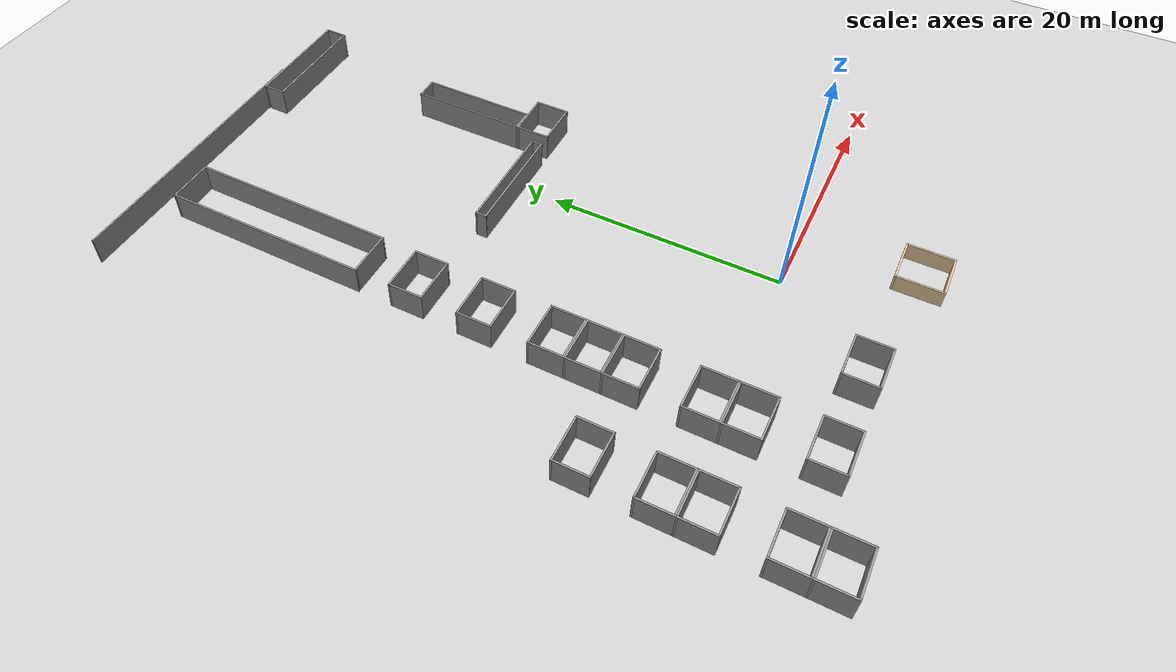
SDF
<sdf version="1.6">
 <world name="default">
  <model name="ground_plane">
   <static>1</static>
   <link name="link">
    <collision name="collision">
     <geometry><plane><normal>0 0 1</normal><size>105 105</size></plane></geometry>
     <surface>
      <contact><collide_bitmask>65535</collide_bitmask></contact>
      <friction><ode><mu>100</mu><mu2>50</mu2></ode></friction>
     </surface>
    </collision>
    <visual name="visual">
     <cast_shadows>0</cast_shadows>
     <geometry><plane><normal>0 0 1</normal><size>105 105</size></plane></geometry>
     <material>
      <script><uri>file://media/materials/scripts/gazebo.material</uri><name>Gazebo/Grey</name></script>
     </material>
    </visual>
   </link>
  </model>
  <model name="wall_25m_4">
   <pose>-10.9942 49.3463 0 0 -0 0</pose>
   <link name="Wall_28">
    <collision name="Wall_28_Collision">
     <geometry><box><size>25 0.15 2.5</size></box></geometry>
     <pose>0 0 1.25 0 -0 0</pose>
    </collision>
    <visual name="Wall_28_Visual">
     <pose>0 0 1.25 0 -0 0</pose>
     <geometry><box><size>25 0.15 2.5</size></box></geometry>
     <material>
      <script><uri>file://media/materials/scripts/gazebo.material</uri><name>Gazebo/Grey</name></script>
      <ambient>1 1 1 1</ambient>
     </material>
     <meta><layer>0</layer></meta>
    </visual>
   </link>
   <static>1</static>
  </model>
  <model name="base3x4_29">
   <pose>6.40581 24.5341 0 0 -0 0</pose>
   <link name="Wall_18">
    <collision name="Wall_18_Collision">
     <geometry><box><size>3 0.15 2.5</size></box></geometry>
     <pose>0 0 1.25 0 -0 0</pose>
    </collision>
    <visual name="Wall_18_Visual">
     <pose>0 0 1.25 0 -0 0</pose>
     <geometry><box><size>3 0.15 2.5</size></box></geometry>
     <material>
      <script><uri>file://media/materials/scripts/gazebo.material</uri><name>Gazebo/Grey</name></script>
      <ambient>1 1 1 1</ambient>
     </material>
     <meta><layer>0</layer></meta>
    </visual>
    <pose>-1.925 -0 0 0 -0 -1.5708</pose>
   </link>
   <link name="Wall_19">
    <collision name="Wall_19_Collision">
     <geometry><box><size>4 0.15 2.5</size></box></geometry>
     <pose>0 0 1.25 0 -0 0</pose>
    </collision>
    <visual name="Wall_19_Visual">
     <pose>0 0 1.25 0 -0 0</pose>
     <geometry><box><size>4 0.15 2.5</size></box></geometry>
     <material>
      <script><uri>file://media/materials/scripts/gazebo.material</uri><name>Gazebo/Grey</name></script>
      <ambient>1 1 1 1</ambient>
     </material>
     <meta><layer>0</layer></meta>
    </visual>
    <pose>-0 -1.425 0 0 -0 0</pose>
   </link>
   <link name="Wall_20">
    <collision name="Wall_20_Collision">
     <geometry><box><size>3 0.15 2.5</size></box></geometry>
     <pose>0 0 1.25 0 -0 0</pose>
    </collision>
    <visual name="Wall_20_Visual">
     <pose>0 0 1.25 0 -0 0</pose>
     <geometry><box><size>3 0.15 2.5</size></box></geometry>
     <material>
      <script><uri>file://media/materials/scripts/gazebo.material</uri><name>Gazebo/Grey</name></script>
      <ambient>1 1 1 1</ambient>
     </material>
     <meta><layer>0</layer></meta>
    </visual>
    <pose>1.925 -0 0 0 -0 1.5708</pose>
   </link>
   <link name="Wall_21">
    <collision name="Wall_21_Collision">
     <geometry><box><size>4 0.15 2.5</size></box></geometry>
     <pose>0 0 1.25 0 -0 0</pose>
    </collision>
    <visual name="Wall_21_Visual">
     <pose>0 0 1.25 0 -0 0</pose>
     <geometry><box><size>4 0.15 2.5</size></box></geometry>
     <material>
      <script><uri>file://media/materials/scripts/gazebo.material</uri><name>Gazebo/Grey</name></script>
      <ambient>1 1 1 1</ambient>
     </material>
     <meta><layer>0</layer></meta>
    </visual>
    <pose>-0 1.425 0 0 -0 3.14159</pose>
   </link>
   <static>1</static>
  </model>
  <model name="base10x2_0">
   <pose>5.40521 31.0336 0 0 -0 0</pose>
   <link name="Wall_20">
    <collision name="Wall_20_Collision">
     <geometry><box><size>2 0.15 2.5</size></box></geometry>
     <pose>0 0 1.25 0 -0 0</pose>
    </collision>
    <visual name="Wall_20_Visual">
     <pose>0 0 1.25 0 -0 0</pose>
     <geometry><box><size>2 0.15 2.5</size></box></geometry>
     <material>
      <script><uri>file://media/materials/scripts/gazebo.material</uri><name>Gazebo/Grey</name></script>
      <ambient>1 1 1 1</ambient>
     </material>
     <meta><layer>0</layer></meta>
    </visual>
    <pose>0 4.925 0 0 -0 0</pose>
   </link>
   <link name="Wall_21">
    <collision name="Wall_21_Collision">
     <geometry><box><size>10 0.15 2.5</size></box></geometry>
     <pose>0 0 1.25 0 -0 0</pose>
    </collision>
    <visual name="Wall_21_Visual">
     <pose>0 0 1.25 0 -0 0</pose>
     <geometry><box><size>10 0.15 2.5</size></box></geometry>
     <material>
      <script><uri>file://media/materials/scripts/gazebo.material</uri><name>Gazebo/Grey</name></script>
      <ambient>1 1 1 1</ambient>
     </material>
     <meta><layer>0</layer></meta>
    </visual>
    <pose>0.925 -0 0 0 -0 -1.5708</pose>
   </link>
   <link name="Wall_22">
    <collision name="Wall_22_Collision">
     <geometry><box><size>2 0.15 2.5</size></box></geometry>
     <pose>0 0 1.25 0 -0 0</pose>
    </collision>
    <visual name="Wall_22_Visual">
     <pose>0 0 1.25 0 -0 0</pose>
     <geometry><box><size>2 0.15 2.5</size></box></geometry>
     <material>
      <script><uri>file://media/materials/scripts/gazebo.material</uri><name>Gazebo/Grey</name></script>
      <ambient>1 1 1 1</ambient>
     </material>
     <meta><layer>0</layer></meta>
    </visual>
    <pose>0 -4.925 0 0 -0 3.14159</pose>
   </link>
   <link name="Wall_23">
    <collision name="Wall_23_Collision">
     <geometry><box><size>10 0.15 2.5</size></box></geometry>
     <pose>0 0 1.25 0 -0 0</pose>
    </collision>
    <visual name="Wall_23_Visual">
     <pose>0 0 1.25 0 -0 0</pose>
     <geometry><box><size>10 0.15 2.5</size></box></geometry>
     <material>
      <script><uri>file://media/materials/scripts/gazebo.material</uri><name>Gazebo/Grey</name></script>
      <ambient>1 1 1 1</ambient>
     </material>
     <meta><layer>0</layer></meta>
    </visual>
    <pose>-0.925 -0 0 0 -0 1.5708</pose>
   </link>
   <static>1</static>
  </model>
  <model name="base3x4_67">
   <pose>-22.4088 -11.219 0 0 -0 0</pose>
   <link name="Wall_18">
    <collision name="Wall_18_Collision">
     <geometry><box><size>3 0.15 2.5</size></box></geometry>
     <pose>0 0 1.25 0 -0 0</pose>
    </collision>
    <visual name="Wall_18_Visual">
     <pose>0 0 1.25 0 -0 0</pose>
     <geometry><box><size>3 0.15 2.5</size></box></geometry>
     <material>
      <script><uri>file://media/materials/scripts/gazebo.material</uri><name>Gazebo/Grey</name></script>
      <ambient>1 1 1 1</ambient>
     </material>
     <meta><layer>0</layer></meta>
    </visual>
    <pose>-1.925 -0 0 0 -0 -1.5708</pose>
   </link>
   <link name="Wall_19">
    <collision name="Wall_19_Collision">
     <geometry><box><size>4 0.15 2.5</size></box></geometry>
     <pose>0 0 1.25 0 -0 0</pose>
    </collision>
    <visual name="Wall_19_Visual">
     <pose>0 0 1.25 0 -0 0</pose>
     <geometry><box><size>4 0.15 2.5</size></box></geometry>
     <material>
      <script><uri>file://media/materials/scripts/gazebo.material</uri><name>Gazebo/Grey</name></script>
      <ambient>1 1 1 1</ambient>
     </material>
     <meta><layer>0</layer></meta>
    </visual>
    <pose>-0 -1.425 0 0 -0 0</pose>
   </link>
   <link name="Wall_20">
    <collision name="Wall_20_Collision">
     <geometry><box><size>3 0.15 2.5</size></box></geometry>
     <pose>0 0 1.25 0 -0 0</pose>
    </collision>
    <visual name="Wall_20_Visual">
     <pose>0 0 1.25 0 -0 0</pose>
     <geometry><box><size>3 0.15 2.5</size></box></geometry>
     <material>
      <script><uri>file://media/materials/scripts/gazebo.material</uri><name>Gazebo/Grey</name></script>
      <ambient>1 1 1 1</ambient>
     </material>
     <meta><layer>0</layer></meta>
    </visual>
    <pose>1.925 -0 0 0 -0 1.5708</pose>
   </link>
   <link name="Wall_21">
    <collision name="Wall_21_Collision">
     <geometry><box><size>4 0.15 2.5</size></box></geometry>
     <pose>0 0 1.25 0 -0 0</pose>
    </collision>
    <visual name="Wall_21_Visual">
     <pose>0 0 1.25 0 -0 0</pose>
     <geometry><box><size>4 0.15 2.5</size></box></geometry>
     <material>
      <script><uri>file://media/materials/scripts/gazebo.material</uri><name>Gazebo/Grey</name></script>
      <ambient>1 1 1 1</ambient>
     </material>
     <meta><layer>0</layer></meta>
    </visual>
    <pose>-0 1.425 0 0 -0 3.14159</pose>
   </link>
   <static>1</static>
  </model>
  <model name="base3x4_68">
   <pose>-22.41 -8.21789 0 0 -0 0</pose>
   <link name="Wall_18">
    <collision name="Wall_18_Collision">
     <geometry><box><size>3 0.15 2.5</size></box></geometry>
     <pose>0 0 1.25 0 -0 0</pose>
    </collision>
    <visual name="Wall_18_Visual">
     <pose>0 0 1.25 0 -0 0</pose>
     <geometry><box><size>3 0.15 2.5</size></box></geometry>
     <material>
      <script><uri>file://media/materials/scripts/gazebo.material</uri><name>Gazebo/Grey</name></script>
      <ambient>1 1 1 1</ambient>
     </material>
     <meta><layer>0</layer></meta>
    </visual>
    <pose>-1.925 -0 0 0 -0 -1.5708</pose>
   </link>
   <link name="Wall_19">
    <collision name="Wall_19_Collision">
     <geometry><box><size>4 0.15 2.5</size></box></geometry>
     <pose>0 0 1.25 0 -0 0</pose>
    </collision>
    <visual name="Wall_19_Visual">
     <pose>0 0 1.25 0 -0 0</pose>
     <geometry><box><size>4 0.15 2.5</size></box></geometry>
     <material>
      <script><uri>file://media/materials/scripts/gazebo.material</uri><name>Gazebo/Grey</name></script>
      <ambient>1 1 1 1</ambient>
     </material>
     <meta><layer>0</layer></meta>
    </visual>
    <pose>-0 -1.425 0 0 -0 0</pose>
   </link>
   <link name="Wall_20">
    <collision name="Wall_20_Collision">
     <geometry><box><size>3 0.15 2.5</size></box></geometry>
     <pose>0 0 1.25 0 -0 0</pose>
    </collision>
    <visual name="Wall_20_Visual">
     <pose>0 0 1.25 0 -0 0</pose>
     <geometry><box><size>3 0.15 2.5</size></box></geometry>
     <material>
      <script><uri>file://media/materials/scripts/gazebo.material</uri><name>Gazebo/Grey</name></script>
      <ambient>1 1 1 1</ambient>
     </material>
     <meta><layer>0</layer></meta>
    </visual>
    <pose>1.925 -0 0 0 -0 1.5708</pose>
   </link>
   <link name="Wall_21">
    <collision name="Wall_21_Collision">
     <geometry><box><size>4 0.15 2.5</size></box></geometry>
     <pose>0 0 1.25 0 -0 0</pose>
    </collision>
    <visual name="Wall_21_Visual">
     <pose>0 0 1.25 0 -0 0</pose>
     <geometry><box><size>4 0.15 2.5</size></box></geometry>
     <material>
      <script><uri>file://media/materials/scripts/gazebo.material</uri><name>Gazebo/Grey</name></script>
      <ambient>1 1 1 1</ambient>
     </material>
     <meta><layer>0</layer></meta>
    </visual>
    <pose>-0 1.425 0 0 -0 3.14159</pose>
   </link>
   <static>1</static>
  </model>
  <model name="base3x4_70">
   <pose>-22.4069 -2.22304 0 0 -0 0</pose>
   <link name="Wall_18">
    <collision name="Wall_18_Collision">
     <geometry><box><size>3 0.15 2.5</size></box></geometry>
     <pose>0 0 1.25 0 -0 0</pose>
    </collision>
    <visual name="Wall_18_Visual">
     <pose>0 0 1.25 0 -0 0</pose>
     <geometry><box><size>3 0.15 2.5</size></box></geometry>
     <material>
      <script><uri>file://media/materials/scripts/gazebo.material</uri><name>Gazebo/Grey</name></script>
      <ambient>1 1 1 1</ambient>
     </material>
     <meta><layer>0</layer></meta>
    </visual>
    <pose>-1.925 -0 0 0 -0 -1.5708</pose>
   </link>
   <link name="Wall_19">
    <collision name="Wall_19_Collision">
     <geometry><box><size>4 0.15 2.5</size></box></geometry>
     <pose>0 0 1.25 0 -0 0</pose>
    </collision>
    <visual name="Wall_19_Visual">
     <pose>0 0 1.25 0 -0 0</pose>
     <geometry><box><size>4 0.15 2.5</size></box></geometry>
     <material>
      <script><uri>file://media/materials/scripts/gazebo.material</uri><name>Gazebo/Grey</name></script>
      <ambient>1 1 1 1</ambient>
     </material>
     <meta><layer>0</layer></meta>
    </visual>
    <pose>-0 -1.425 0 0 -0 0</pose>
   </link>
   <link name="Wall_20">
    <collision name="Wall_20_Collision">
     <geometry><box><size>3 0.15 2.5</size></box></geometry>
     <pose>0 0 1.25 0 -0 0</pose>
    </collision>
    <visual name="Wall_20_Visual">
     <pose>0 0 1.25 0 -0 0</pose>
     <geometry><box><size>3 0.15 2.5</size></box></geometry>
     <material>
      <script><uri>file://media/materials/scripts/gazebo.material</uri><name>Gazebo/Grey</name></script>
      <ambient>1 1 1 1</ambient>
     </material>
     <meta><layer>0</layer></meta>
    </visual>
    <pose>1.925 -0 0 0 -0 1.5708</pose>
   </link>
   <link name="Wall_21">
    <collision name="Wall_21_Collision">
     <geometry><box><size>4 0.15 2.5</size></box></geometry>
     <pose>0 0 1.25 0 -0 0</pose>
    </collision>
    <visual name="Wall_21_Visual">
     <pose>0 0 1.25 0 -0 0</pose>
     <geometry><box><size>4 0.15 2.5</size></box></geometry>
     <material>
      <script><uri>file://media/materials/scripts/gazebo.material</uri><name>Gazebo/Grey</name></script>
      <ambient>1 1 1 1</ambient>
     </material>
     <meta><layer>0</layer></meta>
    </visual>
    <pose>-0 1.425 0 0 -0 3.14159</pose>
   </link>
   <static>1</static>
  </model>
  <model name="base3x4_71">
   <pose>-22.4105 0.763278 0 0 -0 0</pose>
   <link name="Wall_18">
    <collision name="Wall_18_Collision">
     <geometry><box><size>3 0.15 2.5</size></box></geometry>
     <pose>0 0 1.25 0 -0 0</pose>
    </collision>
    <visual name="Wall_18_Visual">
     <pose>0 0 1.25 0 -0 0</pose>
     <geometry><box><size>3 0.15 2.5</size></box></geometry>
     <material>
      <script><uri>file://media/materials/scripts/gazebo.material</uri><name>Gazebo/Grey</name></script>
      <ambient>1 1 1 1</ambient>
     </material>
     <meta><layer>0</layer></meta>
    </visual>
    <pose>-1.925 -0 0 0 -0 -1.5708</pose>
   </link>
   <link name="Wall_19">
    <collision name="Wall_19_Collision">
     <geometry><box><size>4 0.15 2.5</size></box></geometry>
     <pose>0 0 1.25 0 -0 0</pose>
    </collision>
    <visual name="Wall_19_Visual">
     <pose>0 0 1.25 0 -0 0</pose>
     <geometry><box><size>4 0.15 2.5</size></box></geometry>
     <material>
      <script><uri>file://media/materials/scripts/gazebo.material</uri><name>Gazebo/Grey</name></script>
      <ambient>1 1 1 1</ambient>
     </material>
     <meta><layer>0</layer></meta>
    </visual>
    <pose>-0 -1.425 0 0 -0 0</pose>
   </link>
   <link name="Wall_20">
    <collision name="Wall_20_Collision">
     <geometry><box><size>3 0.15 2.5</size></box></geometry>
     <pose>0 0 1.25 0 -0 0</pose>
    </collision>
    <visual name="Wall_20_Visual">
     <pose>0 0 1.25 0 -0 0</pose>
     <geometry><box><size>3 0.15 2.5</size></box></geometry>
     <material>
      <script><uri>file://media/materials/scripts/gazebo.material</uri><name>Gazebo/Grey</name></script>
      <ambient>1 1 1 1</ambient>
     </material>
     <meta><layer>0</layer></meta>
    </visual>
    <pose>1.925 -0 0 0 -0 1.5708</pose>
   </link>
   <link name="Wall_21">
    <collision name="Wall_21_Collision">
     <geometry><box><size>4 0.15 2.5</size></box></geometry>
     <pose>0 0 1.25 0 -0 0</pose>
    </collision>
    <visual name="Wall_21_Visual">
     <pose>0 0 1.25 0 -0 0</pose>
     <geometry><box><size>4 0.15 2.5</size></box></geometry>
     <material>
      <script><uri>file://media/materials/scripts/gazebo.material</uri><name>Gazebo/Grey</name></script>
      <ambient>1 1 1 1</ambient>
     </material>
     <meta><layer>0</layer></meta>
    </visual>
    <pose>-0 1.425 0 0 -0 3.14159</pose>
   </link>
   <static>1</static>
  </model>
  <model name="base3x4_73">
   <pose>-22.4114 6.74221 0 0 -0 0</pose>
   <link name="Wall_18">
    <collision name="Wall_18_Collision">
     <geometry><box><size>3 0.15 2.5</size></box></geometry>
     <pose>0 0 1.25 0 -0 0</pose>
    </collision>
    <visual name="Wall_18_Visual">
     <pose>0 0 1.25 0 -0 0</pose>
     <geometry><box><size>3 0.15 2.5</size></box></geometry>
     <material>
      <script><uri>file://media/materials/scripts/gazebo.material</uri><name>Gazebo/Grey</name></script>
      <ambient>1 1 1 1</ambient>
     </material>
     <meta><layer>0</layer></meta>
    </visual>
    <pose>-1.925 -0 0 0 -0 -1.5708</pose>
   </link>
   <link name="Wall_19">
    <collision name="Wall_19_Collision">
     <geometry><box><size>4 0.15 2.5</size></box></geometry>
     <pose>0 0 1.25 0 -0 0</pose>
    </collision>
    <visual name="Wall_19_Visual">
     <pose>0 0 1.25 0 -0 0</pose>
     <geometry><box><size>4 0.15 2.5</size></box></geometry>
     <material>
      <script><uri>file://media/materials/scripts/gazebo.material</uri><name>Gazebo/Grey</name></script>
      <ambient>1 1 1 1</ambient>
     </material>
     <meta><layer>0</layer></meta>
    </visual>
    <pose>-0 -1.425 0 0 -0 0</pose>
   </link>
   <link name="Wall_20">
    <collision name="Wall_20_Collision">
     <geometry><box><size>3 0.15 2.5</size></box></geometry>
     <pose>0 0 1.25 0 -0 0</pose>
    </collision>
    <visual name="Wall_20_Visual">
     <pose>0 0 1.25 0 -0 0</pose>
     <geometry><box><size>3 0.15 2.5</size></box></geometry>
     <material>
      <script><uri>file://media/materials/scripts/gazebo.material</uri><name>Gazebo/Grey</name></script>
      <ambient>1 1 1 1</ambient>
     </material>
     <meta><layer>0</layer></meta>
    </visual>
    <pose>1.925 -0 0 0 -0 1.5708</pose>
   </link>
   <link name="Wall_21">
    <collision name="Wall_21_Collision">
     <geometry><box><size>4 0.15 2.5</size></box></geometry>
     <pose>0 0 1.25 0 -0 0</pose>
    </collision>
    <visual name="Wall_21_Visual">
     <pose>0 0 1.25 0 -0 0</pose>
     <geometry><box><size>4 0.15 2.5</size></box></geometry>
     <material>
      <script><uri>file://media/materials/scripts/gazebo.material</uri><name>Gazebo/Grey</name></script>
      <ambient>1 1 1 1</ambient>
     </material>
     <meta><layer>0</layer></meta>
    </visual>
    <pose>-0 1.425 0 0 -0 3.14159</pose>
   </link>
   <static>1</static>
  </model>
  <model name="base3x4_76">
   <pose>-14.4158 -8.25268 0 0 -0 0</pose>
   <link name="Wall_18">
    <collision name="Wall_18_Collision">
     <geometry><box><size>3 0.15 2.5</size></box></geometry>
     <pose>0 0 1.25 0 -0 0</pose>
    </collision>
    <visual name="Wall_18_Visual">
     <pose>0 0 1.25 0 -0 0</pose>
     <geometry><box><size>3 0.15 2.5</size></box></geometry>
     <material>
      <script><uri>file://media/materials/scripts/gazebo.material</uri><name>Gazebo/Grey</name></script>
      <ambient>1 1 1 1</ambient>
     </material>
     <meta><layer>0</layer></meta>
    </visual>
    <pose>-1.925 -0 0 0 -0 -1.5708</pose>
   </link>
   <link name="Wall_19">
    <collision name="Wall_19_Collision">
     <geometry><box><size>4 0.15 2.5</size></box></geometry>
     <pose>0 0 1.25 0 -0 0</pose>
    </collision>
    <visual name="Wall_19_Visual">
     <pose>0 0 1.25 0 -0 0</pose>
     <geometry><box><size>4 0.15 2.5</size></box></geometry>
     <material>
      <script><uri>file://media/materials/scripts/gazebo.material</uri><name>Gazebo/Grey</name></script>
      <ambient>1 1 1 1</ambient>
     </material>
     <meta><layer>0</layer></meta>
    </visual>
    <pose>-0 -1.425 0 0 -0 0</pose>
   </link>
   <link name="Wall_20">
    <collision name="Wall_20_Collision">
     <geometry><box><size>3 0.15 2.5</size></box></geometry>
     <pose>0 0 1.25 0 -0 0</pose>
    </collision>
    <visual name="Wall_20_Visual">
     <pose>0 0 1.25 0 -0 0</pose>
     <geometry><box><size>3 0.15 2.5</size></box></geometry>
     <material>
      <script><uri>file://media/materials/scripts/gazebo.material</uri><name>Gazebo/Grey</name></script>
      <ambient>1 1 1 1</ambient>
     </material>
     <meta><layer>0</layer></meta>
    </visual>
    <pose>1.925 -0 0 0 -0 1.5708</pose>
   </link>
   <link name="Wall_21">
    <collision name="Wall_21_Collision">
     <geometry><box><size>4 0.15 2.5</size></box></geometry>
     <pose>0 0 1.25 0 -0 0</pose>
    </collision>
    <visual name="Wall_21_Visual">
     <pose>0 0 1.25 0 -0 0</pose>
     <geometry><box><size>4 0.15 2.5</size></box></geometry>
     <material>
      <script><uri>file://media/materials/scripts/gazebo.material</uri><name>Gazebo/Grey</name></script>
      <ambient>1 1 1 1</ambient>
     </material>
     <meta><layer>0</layer></meta>
    </visual>
    <pose>-0 1.425 0 0 -0 3.14159</pose>
   </link>
   <static>1</static>
  </model>
  <model name="base3x4_78">
   <pose>-14.4184 -2.26297 0 0 -0 0</pose>
   <link name="Wall_18">
    <collision name="Wall_18_Collision">
     <geometry><box><size>3 0.15 2.5</size></box></geometry>
     <pose>0 0 1.25 0 -0 0</pose>
    </collision>
    <visual name="Wall_18_Visual">
     <pose>0 0 1.25 0 -0 0</pose>
     <geometry><box><size>3 0.15 2.5</size></box></geometry>
     <material>
      <script><uri>file://media/materials/scripts/gazebo.material</uri><name>Gazebo/Grey</name></script>
      <ambient>1 1 1 1</ambient>
     </material>
     <meta><layer>0</layer></meta>
    </visual>
    <pose>-1.925 -0 0 0 -0 -1.5708</pose>
   </link>
   <link name="Wall_19">
    <collision name="Wall_19_Collision">
     <geometry><box><size>4 0.15 2.5</size></box></geometry>
     <pose>0 0 1.25 0 -0 0</pose>
    </collision>
    <visual name="Wall_19_Visual">
     <pose>0 0 1.25 0 -0 0</pose>
     <geometry><box><size>4 0.15 2.5</size></box></geometry>
     <material>
      <script><uri>file://media/materials/scripts/gazebo.material</uri><name>Gazebo/Grey</name></script>
      <ambient>1 1 1 1</ambient>
     </material>
     <meta><layer>0</layer></meta>
    </visual>
    <pose>-0 -1.425 0 0 -0 0</pose>
   </link>
   <link name="Wall_20">
    <collision name="Wall_20_Collision">
     <geometry><box><size>3 0.15 2.5</size></box></geometry>
     <pose>0 0 1.25 0 -0 0</pose>
    </collision>
    <visual name="Wall_20_Visual">
     <pose>0 0 1.25 0 -0 0</pose>
     <geometry><box><size>3 0.15 2.5</size></box></geometry>
     <material>
      <script><uri>file://media/materials/scripts/gazebo.material</uri><name>Gazebo/Grey</name></script>
      <ambient>1 1 1 1</ambient>
     </material>
     <meta><layer>0</layer></meta>
    </visual>
    <pose>1.925 -0 0 0 -0 1.5708</pose>
   </link>
   <link name="Wall_21">
    <collision name="Wall_21_Collision">
     <geometry><box><size>4 0.15 2.5</size></box></geometry>
     <pose>0 0 1.25 0 -0 0</pose>
    </collision>
    <visual name="Wall_21_Visual">
     <pose>0 0 1.25 0 -0 0</pose>
     <geometry><box><size>4 0.15 2.5</size></box></geometry>
     <material>
      <script><uri>file://media/materials/scripts/gazebo.material</uri><name>Gazebo/Grey</name></script>
      <ambient>1 1 1 1</ambient>
     </material>
     <meta><layer>0</layer></meta>
    </visual>
    <pose>-0 1.425 0 0 -0 3.14159</pose>
   </link>
   <static>1</static>
  </model>
  <model name="base3x4_79">
   <pose>-14.4206 0.731399 0 0 -0 0</pose>
   <link name="Wall_18">
    <collision name="Wall_18_Collision">
     <geometry><box><size>3 0.15 2.5</size></box></geometry>
     <pose>0 0 1.25 0 -0 0</pose>
    </collision>
    <visual name="Wall_18_Visual">
     <pose>0 0 1.25 0 -0 0</pose>
     <geometry><box><size>3 0.15 2.5</size></box></geometry>
     <material>
      <script><uri>file://media/materials/scripts/gazebo.material</uri><name>Gazebo/Grey</name></script>
      <ambient>1 1 1 1</ambient>
     </material>
     <meta><layer>0</layer></meta>
    </visual>
    <pose>-1.925 -0 0 0 -0 -1.5708</pose>
   </link>
   <link name="Wall_19">
    <collision name="Wall_19_Collision">
     <geometry><box><size>4 0.15 2.5</size></box></geometry>
     <pose>0 0 1.25 0 -0 0</pose>
    </collision>
    <visual name="Wall_19_Visual">
     <pose>0 0 1.25 0 -0 0</pose>
     <geometry><box><size>4 0.15 2.5</size></box></geometry>
     <material>
      <script><uri>file://media/materials/scripts/gazebo.material</uri><name>Gazebo/Grey</name></script>
      <ambient>1 1 1 1</ambient>
     </material>
     <meta><layer>0</layer></meta>
    </visual>
    <pose>-0 -1.425 0 0 -0 0</pose>
   </link>
   <link name="Wall_20">
    <collision name="Wall_20_Collision">
     <geometry><box><size>3 0.15 2.5</size></box></geometry>
     <pose>0 0 1.25 0 -0 0</pose>
    </collision>
    <visual name="Wall_20_Visual">
     <pose>0 0 1.25 0 -0 0</pose>
     <geometry><box><size>3 0.15 2.5</size></box></geometry>
     <material>
      <script><uri>file://media/materials/scripts/gazebo.material</uri><name>Gazebo/Grey</name></script>
      <ambient>1 1 1 1</ambient>
     </material>
     <meta><layer>0</layer></meta>
    </visual>
    <pose>1.925 -0 0 0 -0 1.5708</pose>
   </link>
   <link name="Wall_21">
    <collision name="Wall_21_Collision">
     <geometry><box><size>4 0.15 2.5</size></box></geometry>
     <pose>0 0 1.25 0 -0 0</pose>
    </collision>
    <visual name="Wall_21_Visual">
     <pose>0 0 1.25 0 -0 0</pose>
     <geometry><box><size>4 0.15 2.5</size></box></geometry>
     <material>
      <script><uri>file://media/materials/scripts/gazebo.material</uri><name>Gazebo/Grey</name></script>
      <ambient>1 1 1 1</ambient>
     </material>
     <meta><layer>0</layer></meta>
    </visual>
    <pose>-0 1.425 0 0 -0 3.14159</pose>
   </link>
   <static>1</static>
  </model>
  <model name="base3x4_81">
   <pose>-14.4195 6.71554 0 0 -0 0</pose>
   <link name="Wall_18">
    <collision name="Wall_18_Collision">
     <geometry><box><size>3 0.15 2.5</size></box></geometry>
     <pose>0 0 1.25 0 -0 0</pose>
    </collision>
    <visual name="Wall_18_Visual">
     <pose>0 0 1.25 0 -0 0</pose>
     <geometry><box><size>3 0.15 2.5</size></box></geometry>
     <material>
      <script><uri>file://media/materials/scripts/gazebo.material</uri><name>Gazebo/Grey</name></script>
      <ambient>1 1 1 1</ambient>
     </material>
     <meta><layer>0</layer></meta>
    </visual>
    <pose>-1.925 -0 0 0 -0 -1.5708</pose>
   </link>
   <link name="Wall_19">
    <collision name="Wall_19_Collision">
     <geometry><box><size>4 0.15 2.5</size></box></geometry>
     <pose>0 0 1.25 0 -0 0</pose>
    </collision>
    <visual name="Wall_19_Visual">
     <pose>0 0 1.25 0 -0 0</pose>
     <geometry><box><size>4 0.15 2.5</size></box></geometry>
     <material>
      <script><uri>file://media/materials/scripts/gazebo.material</uri><name>Gazebo/Grey</name></script>
      <ambient>1 1 1 1</ambient>
     </material>
     <meta><layer>0</layer></meta>
    </visual>
    <pose>-0 -1.425 0 0 -0 0</pose>
   </link>
   <link name="Wall_20">
    <collision name="Wall_20_Collision">
     <geometry><box><size>3 0.15 2.5</size></box></geometry>
     <pose>0 0 1.25 0 -0 0</pose>
    </collision>
    <visual name="Wall_20_Visual">
     <pose>0 0 1.25 0 -0 0</pose>
     <geometry><box><size>3 0.15 2.5</size></box></geometry>
     <material>
      <script><uri>file://media/materials/scripts/gazebo.material</uri><name>Gazebo/Grey</name></script>
      <ambient>1 1 1 1</ambient>
     </material>
     <meta><layer>0</layer></meta>
    </visual>
    <pose>1.925 -0 0 0 -0 1.5708</pose>
   </link>
   <link name="Wall_21">
    <collision name="Wall_21_Collision">
     <geometry><box><size>4 0.15 2.5</size></box></geometry>
     <pose>0 0 1.25 0 -0 0</pose>
    </collision>
    <visual name="Wall_21_Visual">
     <pose>0 0 1.25 0 -0 0</pose>
     <geometry><box><size>4 0.15 2.5</size></box></geometry>
     <material>
      <script><uri>file://media/materials/scripts/gazebo.material</uri><name>Gazebo/Grey</name></script>
      <ambient>1 1 1 1</ambient>
     </material>
     <meta><layer>0</layer></meta>
    </visual>
    <pose>-0 1.425 0 0 -0 3.14159</pose>
   </link>
   <static>1</static>
  </model>
  <model name="base3x4_66">
   <pose>-14.4193 9.67951 0 0 -0 0</pose>
   <link name="Wall_18">
    <collision name="Wall_18_Collision">
     <geometry><box><size>3 0.15 2.5</size></box></geometry>
     <pose>0 0 1.25 0 -0 0</pose>
    </collision>
    <visual name="Wall_18_Visual">
     <pose>0 0 1.25 0 -0 0</pose>
     <geometry><box><size>3 0.15 2.5</size></box></geometry>
     <material>
      <script><uri>file://media/materials/scripts/gazebo.material</uri><name>Gazebo/Grey</name></script>
      <ambient>1 1 1 1</ambient>
     </material>
     <meta><layer>0</layer></meta>
    </visual>
    <pose>-1.925 -0 0 0 -0 -1.5708</pose>
   </link>
   <link name="Wall_19">
    <collision name="Wall_19_Collision">
     <geometry><box><size>4 0.15 2.5</size></box></geometry>
     <pose>0 0 1.25 0 -0 0</pose>
    </collision>
    <visual name="Wall_19_Visual">
     <pose>0 0 1.25 0 -0 0</pose>
     <geometry><box><size>4 0.15 2.5</size></box></geometry>
     <material>
      <script><uri>file://media/materials/scripts/gazebo.material</uri><name>Gazebo/Grey</name></script>
      <ambient>1 1 1 1</ambient>
     </material>
     <meta><layer>0</layer></meta>
    </visual>
    <pose>-0 -1.425 0 0 -0 0</pose>
   </link>
   <link name="Wall_20">
    <collision name="Wall_20_Collision">
     <geometry><box><size>3 0.15 2.5</size></box></geometry>
     <pose>0 0 1.25 0 -0 0</pose>
    </collision>
    <visual name="Wall_20_Visual">
     <pose>0 0 1.25 0 -0 0</pose>
     <geometry><box><size>3 0.15 2.5</size></box></geometry>
     <material>
      <script><uri>file://media/materials/scripts/gazebo.material</uri><name>Gazebo/Grey</name></script>
      <ambient>1 1 1 1</ambient>
     </material>
     <meta><layer>0</layer></meta>
    </visual>
    <pose>1.925 -0 0 0 -0 1.5708</pose>
   </link>
   <link name="Wall_21">
    <collision name="Wall_21_Collision">
     <geometry><box><size>4 0.15 2.5</size></box></geometry>
     <pose>0 0 1.25 0 -0 0</pose>
    </collision>
    <visual name="Wall_21_Visual">
     <pose>0 0 1.25 0 -0 0</pose>
     <geometry><box><size>4 0.15 2.5</size></box></geometry>
     <material>
      <script><uri>file://media/materials/scripts/gazebo.material</uri><name>Gazebo/Grey</name></script>
      <ambient>1 1 1 1</ambient>
     </material>
     <meta><layer>0</layer></meta>
    </visual>
    <pose>-0 1.425 0 0 -0 3.14159</pose>
   </link>
   <static>1</static>
  </model>
  <model name="base3x4_11">
   <pose>-14.4193 12.679 0 0 -0 0</pose>
   <link name="Wall_18">
    <collision name="Wall_18_Collision">
     <geometry><box><size>3 0.15 2.5</size></box></geometry>
     <pose>0 0 1.25 0 -0 0</pose>
    </collision>
    <visual name="Wall_18_Visual">
     <pose>0 0 1.25 0 -0 0</pose>
     <geometry><box><size>3 0.15 2.5</size></box></geometry>
     <material>
      <script><uri>file://media/materials/scripts/gazebo.material</uri><name>Gazebo/Grey</name></script>
      <ambient>1 1 1 1</ambient>
     </material>
     <meta><layer>0</layer></meta>
    </visual>
    <pose>-1.925 -0 0 0 -0 -1.5708</pose>
   </link>
   <link name="Wall_19">
    <collision name="Wall_19_Collision">
     <geometry><box><size>4 0.15 2.5</size></box></geometry>
     <pose>0 0 1.25 0 -0 0</pose>
    </collision>
    <visual name="Wall_19_Visual">
     <pose>0 0 1.25 0 -0 0</pose>
     <geometry><box><size>4 0.15 2.5</size></box></geometry>
     <material>
      <script><uri>file://media/materials/scripts/gazebo.material</uri><name>Gazebo/Grey</name></script>
      <ambient>1 1 1 1</ambient>
     </material>
     <meta><layer>0</layer></meta>
    </visual>
    <pose>-0 -1.425 0 0 -0 0</pose>
   </link>
   <link name="Wall_20">
    <collision name="Wall_20_Collision">
     <geometry><box><size>3 0.15 2.5</size></box></geometry>
     <pose>0 0 1.25 0 -0 0</pose>
    </collision>
    <visual name="Wall_20_Visual">
     <pose>0 0 1.25 0 -0 0</pose>
     <geometry><box><size>3 0.15 2.5</size></box></geometry>
     <material>
      <script><uri>file://media/materials/scripts/gazebo.material</uri><name>Gazebo/Grey</name></script>
      <ambient>1 1 1 1</ambient>
     </material>
     <meta><layer>0</layer></meta>
    </visual>
    <pose>1.925 -0 0 0 -0 1.5708</pose>
   </link>
   <link name="Wall_21">
    <collision name="Wall_21_Collision">
     <geometry><box><size>4 0.15 2.5</size></box></geometry>
     <pose>0 0 1.25 0 -0 0</pose>
    </collision>
    <visual name="Wall_21_Visual">
     <pose>0 0 1.25 0 -0 0</pose>
     <geometry><box><size>4 0.15 2.5</size></box></geometry>
     <material>
      <script><uri>file://media/materials/scripts/gazebo.material</uri><name>Gazebo/Grey</name></script>
      <ambient>1 1 1 1</ambient>
     </material>
     <meta><layer>0</layer></meta>
    </visual>
    <pose>-0 1.425 0 0 -0 3.14159</pose>
   </link>
   <static>1</static>
  </model>
  <model name="base3x4_77">
   <pose>-14.4153 18.6617 0 0 -0 0</pose>
   <link name="Wall_18">
    <collision name="Wall_18_Collision">
     <geometry><box><size>3 0.15 2.5</size></box></geometry>
     <pose>0 0 1.25 0 -0 0</pose>
    </collision>
    <visual name="Wall_18_Visual">
     <pose>0 0 1.25 0 -0 0</pose>
     <geometry><box><size>3 0.15 2.5</size></box></geometry>
     <material>
      <script><uri>file://media/materials/scripts/gazebo.material</uri><name>Gazebo/Grey</name></script>
      <ambient>1 1 1 1</ambient>
     </material>
     <meta><layer>0</layer></meta>
    </visual>
    <pose>-1.925 -0 0 0 -0 -1.5708</pose>
   </link>
   <link name="Wall_19">
    <collision name="Wall_19_Collision">
     <geometry><box><size>4 0.15 2.5</size></box></geometry>
     <pose>0 0 1.25 0 -0 0</pose>
    </collision>
    <visual name="Wall_19_Visual">
     <pose>0 0 1.25 0 -0 0</pose>
     <geometry><box><size>4 0.15 2.5</size></box></geometry>
     <material>
      <script><uri>file://media/materials/scripts/gazebo.material</uri><name>Gazebo/Grey</name></script>
      <ambient>1 1 1 1</ambient>
     </material>
     <meta><layer>0</layer></meta>
    </visual>
    <pose>-0 -1.425 0 0 -0 0</pose>
   </link>
   <link name="Wall_20">
    <collision name="Wall_20_Collision">
     <geometry><box><size>3 0.15 2.5</size></box></geometry>
     <pose>0 0 1.25 0 -0 0</pose>
    </collision>
    <visual name="Wall_20_Visual">
     <pose>0 0 1.25 0 -0 0</pose>
     <geometry><box><size>3 0.15 2.5</size></box></geometry>
     <material>
      <script><uri>file://media/materials/scripts/gazebo.material</uri><name>Gazebo/Grey</name></script>
      <ambient>1 1 1 1</ambient>
     </material>
     <meta><layer>0</layer></meta>
    </visual>
    <pose>1.925 -0 0 0 -0 1.5708</pose>
   </link>
   <link name="Wall_21">
    <collision name="Wall_21_Collision">
     <geometry><box><size>4 0.15 2.5</size></box></geometry>
     <pose>0 0 1.25 0 -0 0</pose>
    </collision>
    <visual name="Wall_21_Visual">
     <pose>0 0 1.25 0 -0 0</pose>
     <geometry><box><size>4 0.15 2.5</size></box></geometry>
     <material>
      <script><uri>file://media/materials/scripts/gazebo.material</uri><name>Gazebo/Grey</name></script>
      <ambient>1 1 1 1</ambient>
     </material>
     <meta><layer>0</layer></meta>
    </visual>
    <pose>-0 1.425 0 0 -0 3.14159</pose>
   </link>
   <static>1</static>
  </model>
  <model name="base18x4_4">
   <pose>-14.4191 38.0948 0 0 -0 0</pose>
   <link name="Wall_6">
    <collision name="Wall_6_Collision">
     <geometry><box><size>18 0.15 2.5</size></box></geometry>
     <pose>0 0 1.25 0 -0 0</pose>
    </collision>
    <visual name="Wall_6_Visual">
     <pose>0 0 1.25 0 -0 0</pose>
     <geometry><box><size>18 0.15 2.5</size></box></geometry>
     <material>
      <script><uri>file://media/materials/scripts/gazebo.material</uri><name>Gazebo/Grey</name></script>
      <ambient>1 1 1 1</ambient>
     </material>
     <meta><layer>0</layer></meta>
    </visual>
    <pose>-1.925 0 0 0 -0 -1.5708</pose>
   </link>
   <link name="Wall_7">
    <collision name="Wall_7_Collision">
     <geometry><box><size>4 0.15 2.5</size></box></geometry>
     <pose>0 0 1.25 0 -0 0</pose>
    </collision>
    <visual name="Wall_7_Visual">
     <pose>0 0 1.25 0 -0 0</pose>
     <geometry><box><size>4 0.15 2.5</size></box></geometry>
     <material>
      <script><uri>file://media/materials/scripts/gazebo.material</uri><name>Gazebo/Grey</name></script>
      <ambient>1 1 1 1</ambient>
     </material>
     <meta><layer>0</layer></meta>
    </visual>
    <pose>0 -8.925 0 0 -0 0</pose>
   </link>
   <link name="Wall_8">
    <collision name="Wall_8_Collision">
     <geometry><box><size>18 0.15 2.5</size></box></geometry>
     <pose>0 0 1.25 0 -0 0</pose>
    </collision>
    <visual name="Wall_8_Visual">
     <pose>0 0 1.25 0 -0 0</pose>
     <geometry><box><size>18 0.15 2.5</size></box></geometry>
     <material>
      <script><uri>file://media/materials/scripts/gazebo.material</uri><name>Gazebo/Grey</name></script>
      <ambient>1 1 1 1</ambient>
     </material>
     <meta><layer>0</layer></meta>
    </visual>
    <pose>1.925 0 0 0 -0 1.5708</pose>
   </link>
   <link name="Wall_9">
    <collision name="Wall_9_Collision">
     <geometry><box><size>4 0.15 2.5</size></box></geometry>
     <pose>0 0 1.25 0 -0 0</pose>
    </collision>
    <visual name="Wall_9_Visual">
     <pose>0 0 1.25 0 -0 0</pose>
     <geometry><box><size>4 0.15 2.5</size></box></geometry>
     <material>
      <script><uri>file://media/materials/scripts/gazebo.material</uri><name>Gazebo/Grey</name></script>
      <ambient>1 1 1 1</ambient>
     </material>
     <meta><layer>0</layer></meta>
    </visual>
    <pose>0 8.925 0 0 -0 3.14159</pose>
   </link>
   <static>1</static>
  </model>
  <model name="base3x4_57">
   <pose>-14.4138 24.637 0 0 -0 0</pose>
   <link name="Wall_18">
    <collision name="Wall_18_Collision">
     <geometry><box><size>3 0.15 2.5</size></box></geometry>
     <pose>0 0 1.25 0 -0 0</pose>
    </collision>
    <visual name="Wall_18_Visual">
     <pose>0 0 1.25 0 -0 0</pose>
     <geometry><box><size>3 0.15 2.5</size></box></geometry>
     <material>
      <script><uri>file://media/materials/scripts/gazebo.material</uri><name>Gazebo/Grey</name></script>
      <ambient>1 1 1 1</ambient>
     </material>
     <meta><layer>0</layer></meta>
    </visual>
    <pose>-1.925 -0 0 0 -0 -1.5708</pose>
   </link>
   <link name="Wall_19">
    <collision name="Wall_19_Collision">
     <geometry><box><size>4 0.15 2.5</size></box></geometry>
     <pose>0 0 1.25 0 -0 0</pose>
    </collision>
    <visual name="Wall_19_Visual">
     <pose>0 0 1.25 0 -0 0</pose>
     <geometry><box><size>4 0.15 2.5</size></box></geometry>
     <material>
      <script><uri>file://media/materials/scripts/gazebo.material</uri><name>Gazebo/Grey</name></script>
      <ambient>1 1 1 1</ambient>
     </material>
     <meta><layer>0</layer></meta>
    </visual>
    <pose>-0 -1.425 0 0 -0 0</pose>
   </link>
   <link name="Wall_20">
    <collision name="Wall_20_Collision">
     <geometry><box><size>3 0.15 2.5</size></box></geometry>
     <pose>0 0 1.25 0 -0 0</pose>
    </collision>
    <visual name="Wall_20_Visual">
     <pose>0 0 1.25 0 -0 0</pose>
     <geometry><box><size>3 0.15 2.5</size></box></geometry>
     <material>
      <script><uri>file://media/materials/scripts/gazebo.material</uri><name>Gazebo/Grey</name></script>
      <ambient>1 1 1 1</ambient>
     </material>
     <meta><layer>0</layer></meta>
    </visual>
    <pose>1.925 -0 0 0 -0 1.5708</pose>
   </link>
   <link name="Wall_21">
    <collision name="Wall_21_Collision">
     <geometry><box><size>4 0.15 2.5</size></box></geometry>
     <pose>0 0 1.25 0 -0 0</pose>
    </collision>
    <visual name="Wall_21_Visual">
     <pose>0 0 1.25 0 -0 0</pose>
     <geometry><box><size>4 0.15 2.5</size></box></geometry>
     <material>
      <script><uri>file://media/materials/scripts/gazebo.material</uri><name>Gazebo/Grey</name></script>
      <ambient>1 1 1 1</ambient>
     </material>
     <meta><layer>0</layer></meta>
    </visual>
    <pose>-0 1.425 0 0 -0 3.14159</pose>
   </link>
   <static>1</static>
  </model>
  <model name="box4x4x1.5_2">
   <pose>5.45303 -9.87303 0 0 -0 0</pose>
   <link name="Wall_5">
    <collision name="Wall_5_Collision">
     <geometry><box><size>4 0.15 1.5</size></box></geometry>
     <pose>0 0 0.75 0 -0 0</pose>
    </collision>
    <visual name="Wall_5_Visual">
     <pose>0 0 0.75 0 -0 0</pose>
     <geometry><box><size>4 0.15 1.5</size></box></geometry>
     <material>
      <script><uri>file://media/materials/scripts/gazebo.material</uri><name>Gazebo/Grey</name></script>
      <ambient>0.921569 0.807843 0.615686 1</ambient>
     </material>
     <meta><layer>0</layer></meta>
    </visual>
    <pose>-1.925 -0 0 0 -0 -1.5708</pose>
   </link>
   <link name="Wall_6">
    <collision name="Wall_6_Collision">
     <geometry><box><size>4 0.15 1.5</size></box></geometry>
     <pose>0 0 0.75 0 -0 0</pose>
    </collision>
    <visual name="Wall_6_Visual">
     <pose>0 0 0.75 0 -0 0</pose>
     <geometry><box><size>4 0.15 1.5</size></box></geometry>
     <material>
      <script><uri>file://media/materials/scripts/gazebo.material</uri><name>Gazebo/Grey</name></script>
      <ambient>0.921569 0.807843 0.615686 1</ambient>
     </material>
     <meta><layer>0</layer></meta>
    </visual>
    <pose>0 -1.925 0 0 -0 0</pose>
   </link>
   <link name="Wall_7">
    <collision name="Wall_7_Collision">
     <geometry><box><size>4 0.15 1.5</size></box></geometry>
     <pose>0 0 0.75 0 -0 0</pose>
    </collision>
    <visual name="Wall_7_Visual">
     <pose>0 0 0.75 0 -0 0</pose>
     <geometry><box><size>4 0.15 1.5</size></box></geometry>
     <material>
      <script><uri>file://media/materials/scripts/gazebo.material</uri><name>Gazebo/Grey</name></script>
      <ambient>0.921569 0.807843 0.615686 1</ambient>
     </material>
     <meta><layer>0</layer></meta>
    </visual>
    <pose>1.925 -0 0 0 -0 1.5708</pose>
   </link>
   <link name="Wall_8">
    <collision name="Wall_8_Collision">
     <geometry><box><size>4 0.15 1.5</size></box></geometry>
     <pose>0 0 0.75 0 -0 0</pose>
    </collision>
    <visual name="Wall_8_Visual">
     <pose>0 0 0.75 0 -0 0</pose>
     <geometry><box><size>4 0.15 1.5</size></box></geometry>
     <material>
      <script><uri>file://media/materials/scripts/gazebo.material</uri><name>Gazebo/Grey</name></script>
      <ambient>0.921569 0.807843 0.615686 1</ambient>
     </material>
     <meta><layer>0</layer></meta>
    </visual>
    <pose>0 1.925 0 0 -0 3.14159</pose>
   </link>
   <static>1</static>
  </model>
  <model name="base2x10_0">
   <pose>3.694 48.2896 0 0 -0 0</pose>
   <link name="Wall_10">
    <collision name="Wall_10_Collision">
     <geometry><box><size>2 0.15 2.5</size></box></geometry>
     <pose>0 0 1.25 0 -0 0</pose>
    </collision>
    <visual name="Wall_10_Visual">
     <pose>0 0 1.25 0 -0 0</pose>
     <geometry><box><size>2 0.15 2.5</size></box></geometry>
     <material>
      <script><uri>file://media/materials/scripts/gazebo.material</uri><name>Gazebo/Grey</name></script>
      <ambient>1 1 1 1</ambient>
     </material>
     <meta><layer>0</layer></meta>
    </visual>
    <pose>-4.925 0 0 0 -0 -1.5708</pose>
   </link>
   <link name="Wall_11">
    <collision name="Wall_11_Collision">
     <geometry><box><size>10 0.15 2.5</size></box></geometry>
     <pose>0 0 1.25 0 -0 0</pose>
    </collision>
    <visual name="Wall_11_Visual">
     <pose>0 0 1.25 0 -0 0</pose>
     <geometry><box><size>10 0.15 2.5</size></box></geometry>
     <material>
      <script><uri>file://media/materials/scripts/gazebo.material</uri><name>Gazebo/Grey</name></script>
      <ambient>1 1 1 1</ambient>
     </material>
     <meta><layer>0</layer></meta>
    </visual>
    <pose>0 -0.925 0 0 -0 0</pose>
   </link>
   <link name="Wall_12">
    <collision name="Wall_12_Collision">
     <geometry><box><size>2 0.15 2.5</size></box></geometry>
     <pose>0 0 1.25 0 -0 0</pose>
    </collision>
    <visual name="Wall_12_Visual">
     <pose>0 0 1.25 0 -0 0</pose>
     <geometry><box><size>2 0.15 2.5</size></box></geometry>
     <material>
      <script><uri>file://media/materials/scripts/gazebo.material</uri><name>Gazebo/Grey</name></script>
      <ambient>1 1 1 1</ambient>
     </material>
     <meta><layer>0</layer></meta>
    </visual>
    <pose>4.925 0 0 0 -0 1.5708</pose>
   </link>
   <link name="Wall_13">
    <collision name="Wall_13_Collision">
     <geometry><box><size>10 0.15 2.5</size></box></geometry>
     <pose>0 0 1.25 0 -0 0</pose>
    </collision>
    <visual name="Wall_13_Visual">
     <pose>0 0 1.25 0 -0 0</pose>
     <geometry><box><size>10 0.15 2.5</size></box></geometry>
     <material>
      <script><uri>file://media/materials/scripts/gazebo.material</uri><name>Gazebo/Grey</name></script>
      <ambient>1 1 1 1</ambient>
     </material>
     <meta><layer>0</layer></meta>
    </visual>
    <pose>0 0.925 0 0 -0 3.14159</pose>
   </link>
   <static>1</static>
  </model>
  <model name="base3x4_87">
   <pose>-6.49556 -8.29053 0 0 -0 0</pose>
   <link name="Wall_18">
    <collision name="Wall_18_Collision">
     <geometry><box><size>3 0.15 2.5</size></box></geometry>
     <pose>0 0 1.25 0 -0 0</pose>
    </collision>
    <visual name="Wall_18_Visual">
     <pose>0 0 1.25 0 -0 0</pose>
     <geometry><box><size>3 0.15 2.5</size></box></geometry>
     <material>
      <script><uri>file://media/materials/scripts/gazebo.material</uri><name>Gazebo/Grey</name></script>
      <ambient>1 1 1 1</ambient>
     </material>
     <meta><layer>0</layer></meta>
    </visual>
    <pose>-1.925 -0 0 0 -0 -1.5708</pose>
   </link>
   <link name="Wall_19">
    <collision name="Wall_19_Collision">
     <geometry><box><size>4 0.15 2.5</size></box></geometry>
     <pose>0 0 1.25 0 -0 0</pose>
    </collision>
    <visual name="Wall_19_Visual">
     <pose>0 0 1.25 0 -0 0</pose>
     <geometry><box><size>4 0.15 2.5</size></box></geometry>
     <material>
      <script><uri>file://media/materials/scripts/gazebo.material</uri><name>Gazebo/Grey</name></script>
      <ambient>1 1 1 1</ambient>
     </material>
     <meta><layer>0</layer></meta>
    </visual>
    <pose>-0 -1.425 0 0 -0 0</pose>
   </link>
   <link name="Wall_20">
    <collision name="Wall_20_Collision">
     <geometry><box><size>3 0.15 2.5</size></box></geometry>
     <pose>0 0 1.25 0 -0 0</pose>
    </collision>
    <visual name="Wall_20_Visual">
     <pose>0 0 1.25 0 -0 0</pose>
     <geometry><box><size>3 0.15 2.5</size></box></geometry>
     <material>
      <script><uri>file://media/materials/scripts/gazebo.material</uri><name>Gazebo/Grey</name></script>
      <ambient>1 1 1 1</ambient>
     </material>
     <meta><layer>0</layer></meta>
    </visual>
    <pose>1.925 -0 0 0 -0 1.5708</pose>
   </link>
   <link name="Wall_21">
    <collision name="Wall_21_Collision">
     <geometry><box><size>4 0.15 2.5</size></box></geometry>
     <pose>0 0 1.25 0 -0 0</pose>
    </collision>
    <visual name="Wall_21_Visual">
     <pose>0 0 1.25 0 -0 0</pose>
     <geometry><box><size>4 0.15 2.5</size></box></geometry>
     <material>
      <script><uri>file://media/materials/scripts/gazebo.material</uri><name>Gazebo/Grey</name></script>
      <ambient>1 1 1 1</ambient>
     </material>
     <meta><layer>0</layer></meta>
    </visual>
    <pose>-0 1.425 0 0 -0 3.14159</pose>
   </link>
   <static>1</static>
  </model>
  <model name="base1x10_3">
   <pose>-1.58181 23.5324 0 0 -0 0</pose>
   <link name="Wall_0">
    <collision name="Wall_0_Collision">
     <geometry><box><size>1 0.15 2.5</size></box></geometry>
     <pose>0 0 1.25 0 -0 0</pose>
    </collision>
    <visual name="Wall_0_Visual">
     <pose>0 0 1.25 0 -0 0</pose>
     <geometry><box><size>1 0.15 2.5</size></box></geometry>
     <material>
      <script><uri>file://media/materials/scripts/gazebo.material</uri><name>Gazebo/Grey</name></script>
      <ambient>1 1 1 1</ambient>
     </material>
     <meta><layer>0</layer></meta>
    </visual>
    <pose>-4.925 -0 0 0 -0 -1.5708</pose>
   </link>
   <link name="Wall_1">
    <collision name="Wall_1_Collision">
     <geometry><box><size>10 0.15 2.5</size></box></geometry>
     <pose>0 0 1.25 0 -0 0</pose>
    </collision>
    <visual name="Wall_1_Visual">
     <pose>0 0 1.25 0 -0 0</pose>
     <geometry><box><size>10 0.15 2.5</size></box></geometry>
     <material>
      <script><uri>file://media/materials/scripts/gazebo.material</uri><name>Gazebo/Grey</name></script>
      <ambient>1 1 1 1</ambient>
     </material>
     <meta><layer>0</layer></meta>
    </visual>
    <pose>0 -0.425 0 0 -0 0</pose>
   </link>
   <link name="Wall_2">
    <collision name="Wall_2_Collision">
     <geometry><box><size>1 0.15 2.5</size></box></geometry>
     <pose>0 0 1.25 0 -0 0</pose>
    </collision>
    <visual name="Wall_2_Visual">
     <pose>0 0 1.25 0 -0 0</pose>
     <geometry><box><size>1 0.15 2.5</size></box></geometry>
     <material>
      <script><uri>file://media/materials/scripts/gazebo.material</uri><name>Gazebo/Grey</name></script>
      <ambient>1 1 1 1</ambient>
     </material>
     <meta><layer>0</layer></meta>
    </visual>
    <pose>4.925 -0 0 0 -0 1.5708</pose>
   </link>
   <link name="Wall_3">
    <collision name="Wall_3_Collision">
     <geometry><box><size>10 0.15 2.5</size></box></geometry>
     <pose>0 0 1.25 0 -0 0</pose>
    </collision>
    <visual name="Wall_3_Visual">
     <pose>0 0 1.25 0 -0 0</pose>
     <geometry><box><size>10 0.15 2.5</size></box></geometry>
     <material>
      <script><uri>file://media/materials/scripts/gazebo.material</uri><name>Gazebo/Grey</name></script>
      <ambient>1 1 1 1</ambient>
     </material>
     <meta><layer>0</layer></meta>
    </visual>
    <pose>0 0.425 0 0 -0 3.14159</pose>
   </link>
   <static>1</static>
  </model>
 </world>
</sdf>
